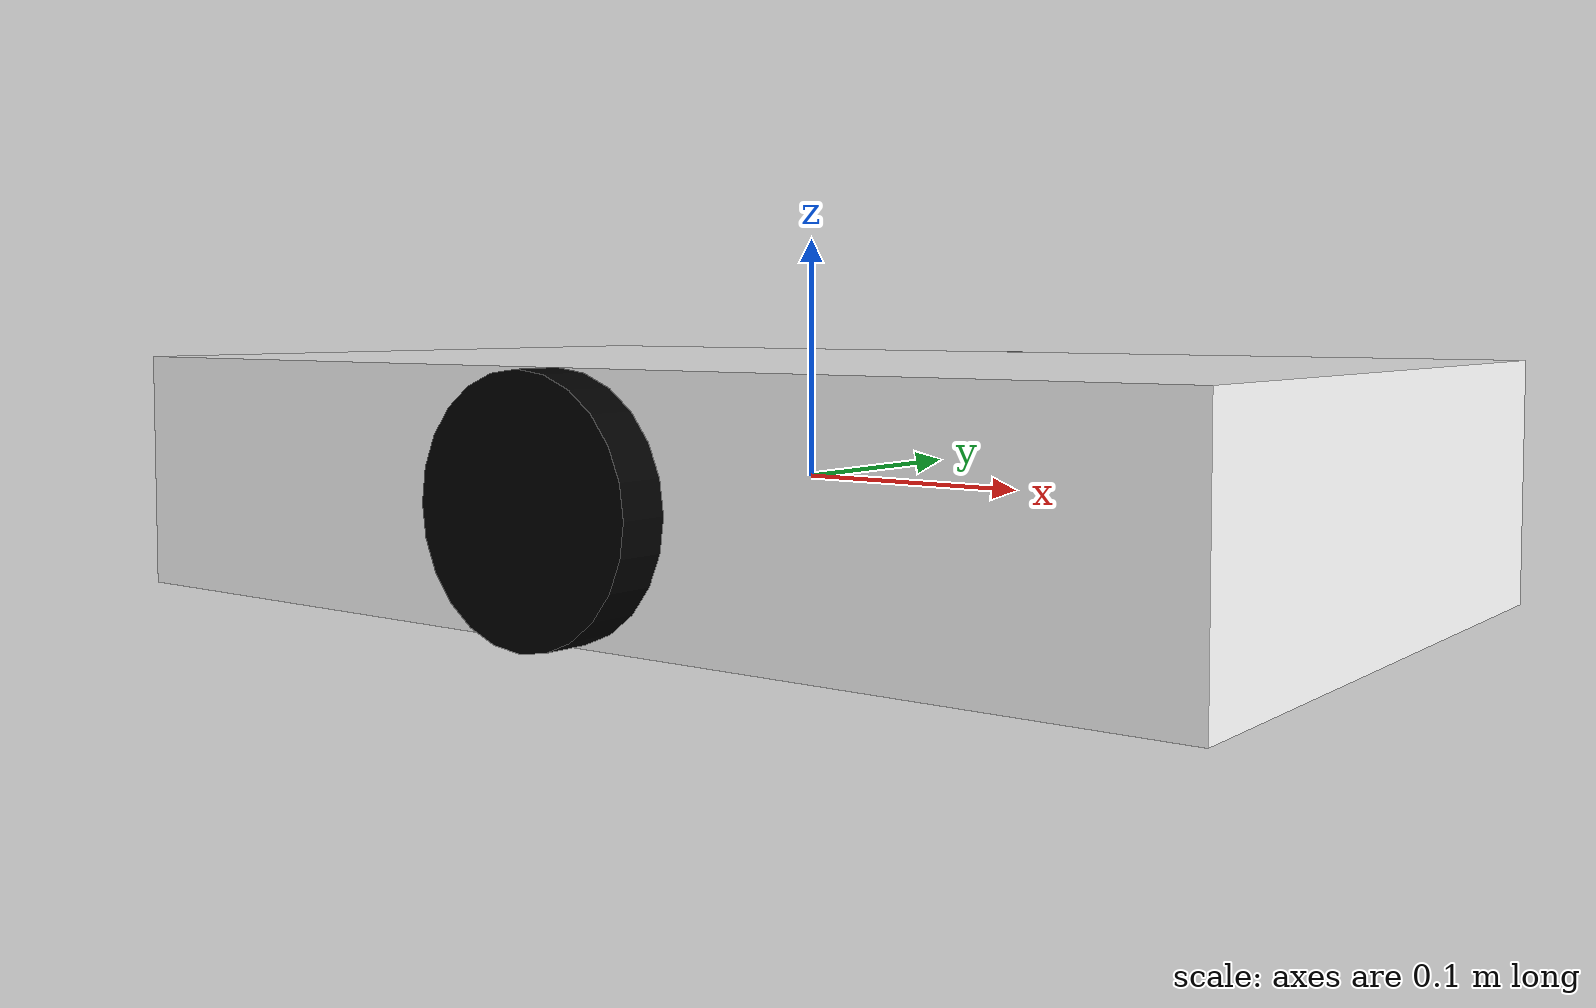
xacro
<?xml version="1.0"?>
<robot xmlns:xacro="http://www.ros.org/wiki/xacro" name="my_robot">
  <!-- Definindo o link para o corpo do robô -->
  <link name="base_link">
    <visual>
      <geometry>
        <box size="0.5 0.3 0.1"/> <!-- Dimensões do corpo do robô -->
      </geometry>
      <material name="blue">
        <color rgba="1 1 1 1"/> <!-- Cor branca -->
      </material>
    </visual>
    <collision>
      <geometry>
        <box size="0.5 0.3 0.1"/> <!-- Dimensões do corpo do robô -->
      </geometry>
    </collision>
    <inertial>
      <mass value="1.0"/> <!-- Massa do corpo do robô -->
      <origin xyz="0 0 0.05" rpy="0 0 0"/> <!-- Elevação do corpo do robô -->
      <inertia ixx="0.1" ixy="0.0" ixz="0.0" iyy="0.1" iyz="0.0" izz="0.1"/> <!-- Tensor de inércia -->
    </inertial>
  </link>

  <!-- Definindo a roda esquerda -->
  <link name="left_wheel_link">
    <visual>
      <geometry>
        <cylinder radius="0.05" length="0.02"/> <!-- Dimensões da roda -->
      </geometry>
      <material name="black">
        <color rgba="0 0 0 1"/> <!-- Cor preta -->
      </material>
    </visual>
    <collision>
      <geometry>
        <cylinder radius="0.05" length="0.02"/> <!-- Dimensões da roda -->
      </geometry>
    </collision>
    <inertial>
      <mass value="0.2"/> <!-- Massa da roda -->
      <origin xyz="0 0 0" rpy="0 0 0"/>
      <inertia ixx="0.01" ixy="0.0" ixz="0.0" iyy="0.01" iyz="0.0" izz="0.01"/> <!-- Tensor de inércia -->
    </inertial>
  </link>

  <!-- Definindo a junta para conectar a roda esquerda ao corpo do robô -->
  <joint name="left_wheel_joint" type="continuous">
    <parent link="base_link"/>
    <child link="left_wheel_link"/>
    <origin xyz="0 0.16 0.0" rpy="1.5708 0 0"/> <!-- Posição da roda esquerda -->
    <axis xyz="0 1 0"/> <!-- Eixo de rotação da roda (vertical) -->
    <limit effort="10.0" lower="0" upper="3.14" velocity="1.0"/> <!-- Limites da junta -->
    <dynamics damping="0.1" friction="0.1"/> <!-- Dinâmica da junta -->
  </joint>

  <!-- Definindo a roda direita -->
  <link name="right_wheel_link">
    <visual>
      <geometry>
        <cylinder radius="0.05" length="0.02"/> <!-- Dimensões da roda -->
      </geometry>
      <material name="black">
        <color rgba="0 0 0 1"/> <!-- Cor preta -->
      </material>
    </visual>
    <collision>
      <geometry>
        <cylinder radius="0.05" length="0.02"/> <!-- Dimensões da roda -->
      </geometry>
    </collision>
    <inertial>
      <mass value="0.2"/> <!-- Massa da roda -->
      <origin xyz="0 0 0" rpy="0 0 0"/>
      <inertia ixx="0.01" ixy="0.0" ixz="0.0" iyy="0.01" iyz="0.0" izz="0.01"/> <!-- Tensor de inércia -->
    </inertial>
  </link>

  <!-- Definindo a junta para conectar a roda direita ao corpo do robô -->
  <joint name="right_wheel_joint" type="continuous">
    <parent link="base_link"/>
    <child link="right_wheel_link"/>
    <origin xyz="0 -0.16 0.0" rpy="1.5708 0 0"/> <!-- Posição da roda direita -->
    <axis xyz="0 1 0"/> <!-- Eixo de rotação da roda (vertical) -->
    <limit effort="10.0" lower="0" upper="3.14" velocity="1.0"/> <!-- Limites da junta -->
    <dynamics damping="0.1" friction="0.1"/> <!-- Dinâmica da junta -->
  </joint>

  <!-- Plugin do Gazebo para o controle da simulação -->
  <gazebo>
    <plugin name="gazebo_ros_control" filename="libgazebo_ros_control.so"/>
  </gazebo>

  <!-- Plugin do Gazebo para a roda esquerda -->
  <gazebo reference="left_wheel_link">
    <material>Gazebo/Black</material>
  </gazebo>

  <!-- Plugin do Gazebo para a roda direita -->
  <gazebo reference="right_wheel_link">
    <material>Gazebo/Black</material>
  </gazebo>
</robot>
